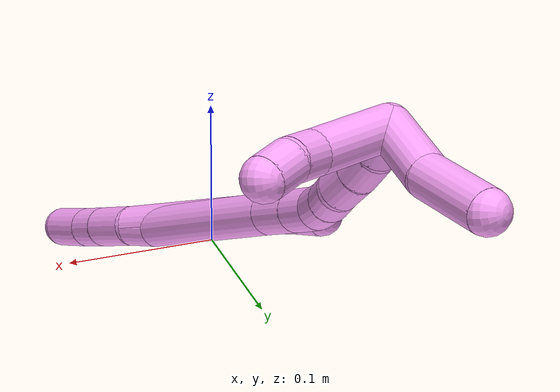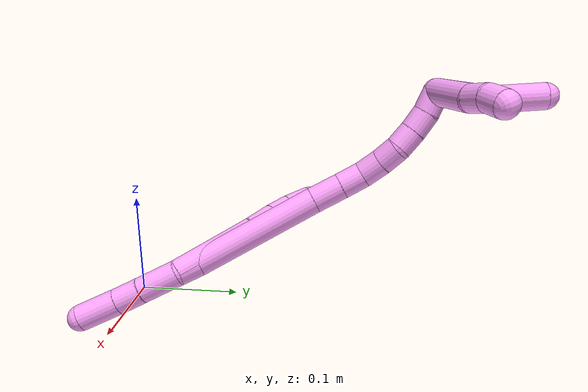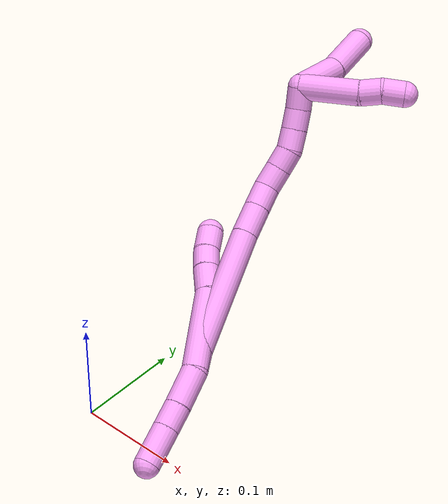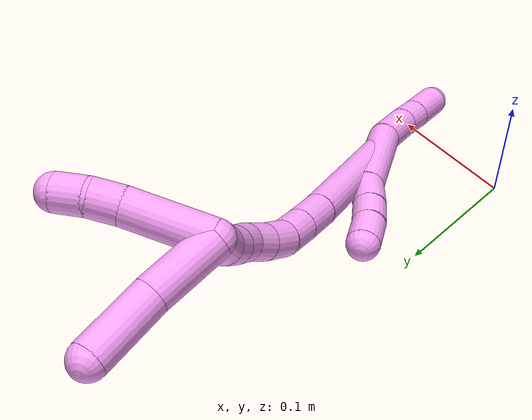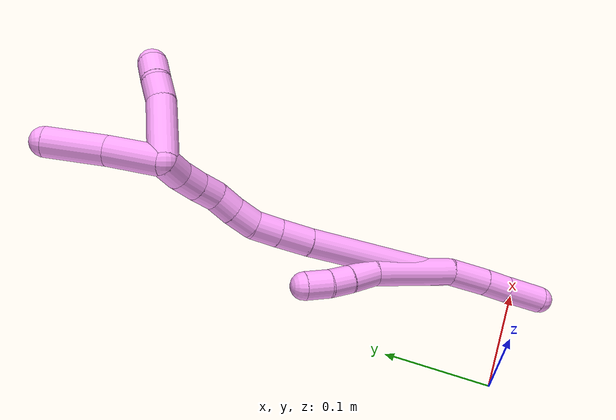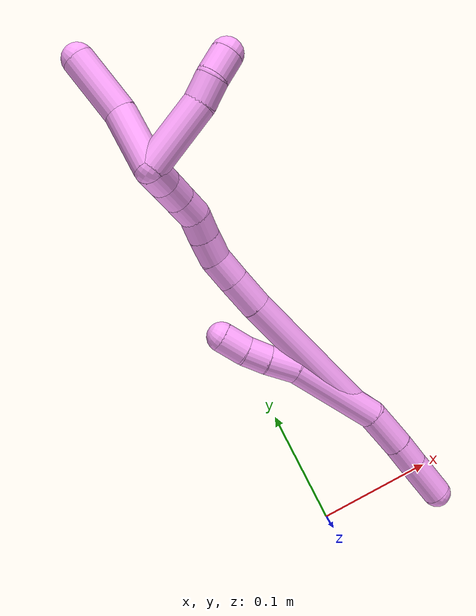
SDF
<sdf version="1.7">
 <world name="default">
  <model name="photoneo_s_sensor">
   <static>1</static>
   <pose>0 0 2 1.57079 1.57079 3.14159</pose>
   <link name="link">
    <inertial><mass>0.1</mass></inertial>
    <sensor name="sensor" type="depth">
     <update_rate>30</update_rate>
     <camera>
      <horizontal_fov>1.22</horizontal_fov>
      <image><width>1920</width><height>1200</height><format>B8G8R8</format></image>
      <clip><near>0.1</near><far>4</far></clip>
      <depth_camera><output>points</output></depth_camera>
     </camera>
     <plugin name="camera_plugin" filename="libgazebo_ros_depth_camera.so">
      <baseline>0.2</baseline>
      <alwaysOn>1</alwaysOn>
      <updateRate>0.0</updateRate>
      <cameraName>camera_ir</cameraName>
      <imageTopicName>/camera/color/image_raw</imageTopicName>
      <cameraInfoTopicName>/camera/color/camera_info</cameraInfoTopicName>
      <depthImageTopicName>/camera/depth/image_raw</depthImageTopicName>
      <depthImageCameraInfoTopicName>/camera/depth/camera_info</depthImageCameraInfoTopicName>
      <pointCloudTopicName>/camera/depth/points</pointCloudTopicName>
      <frameName>fr_optical</frameName>
      <pointCloudCutoff>0.1</pointCloudCutoff>
      <pointCloudCutoffMax>2.0</pointCloudCutoffMax>
      <distortionK1>0</distortionK1>
      <distortionK2>0</distortionK2>
      <distortionK3>0</distortionK3>
      <distortionT1>0</distortionT1>
      <distortionT2>0</distortionT2>
      <CxPrime>0</CxPrime>
      <Cx>0</Cx>
      <Cy>0</Cy>
      <focalLength>0</focalLength>
      <hackBaseline>0</hackBaseline>
     </plugin>
    </sensor>
   </link>
  </model>
  <model name="bin">
   <static>1</static>
   <link name="bottom">
    <collision name="collision-bottom">
     <pose>0 0 -0.01 0 -0 0</pose>
     <geometry><box><size>0.8 0.6 0.02</size></box></geometry>
     <surface>
      <friction><ode><mu>100</mu><mu2>100</mu2></ode></friction>
      <contact><collide_bitmask>65535</collide_bitmask></contact>
     </surface>
    </collision>
   </link>
   <link name="west_wall">
    <collision name="collision-west_wall">
     <pose>-0.41 0 0.1 0 -0 0</pose>
     <geometry><box><size>0.02 0.6 0.2</size></box></geometry>
     <surface>
      <friction><ode><mu>100</mu><mu2>100</mu2></ode></friction>
      <contact><collide_bitmask>65535</collide_bitmask></contact>
     </surface>
    </collision>
   </link>
   <link name="east_wall">
    <collision name="collision-east_wall">
     <pose>0.41 0 0.1 0 -0 0</pose>
     <geometry><box><size>0.02 0.6 0.2</size></box></geometry>
     <surface>
      <friction><ode><mu>100</mu><mu2>100</mu2></ode></friction>
      <contact><collide_bitmask>65535</collide_bitmask></contact>
     </surface>
    </collision>
   </link>
   <link name="south_wall">
    <collision name="collision-south_wall">
     <pose>0 -0.31 0.1 0 -0 0</pose>
     <geometry><box><size>0.8 0.02 0.2</size></box></geometry>
     <surface>
      <friction><ode><mu>100</mu><mu2>100</mu2></ode></friction>
      <contact><collide_bitmask>65535</collide_bitmask></contact>
     </surface>
    </collision>
   </link>
   <link name="north_wall">
    <collision name="collision-north_wall">
     <pose>0 0.31 0.1 0 -0 0</pose>
     <geometry><box><size>0.8 0.02 0.2</size></box></geometry>
     <surface>
      <friction><ode><mu>100</mu><mu2>100</mu2></ode></friction>
      <contact><collide_bitmask>65535</collide_bitmask></contact>
     </surface>
    </collision>
   </link>
  </model>
  <model name="4">
   <static>0</static>
   <link name="4">
    <collision name="collision-cylinder-e_1_2_8">
     <pose>0.002981 0.002922 0.04024 -0.072486 0.073762 -0.002676</pose>
     <geometry><cylinder><radius>0.0125</radius><length>0.080912</length></cylinder></geometry>
     <surface>
      <friction><ode><mu>1.16</mu><mu2>1.16</mu2><slip1>0</slip1><slip2>0</slip2></ode></friction>
      <contact><ode><kp>1e+06</kp><kd>1</kd><max_vel>0</max_vel><min_depth>0.001</min_depth></ode></contact>
     </surface>
    </collision>
    <visual name="visual-cylinder-e_1_2_8">
     <pose>0.002981 0.002922 0.04024 -0.072486 0.073762 -0.002676</pose>
     <geometry><cylinder><radius>0.0125</radius><length>0.080912</length></cylinder></geometry>
     <material><ambient>1 0.65098 0.996078 1</ambient></material>
    </visual>
    <collision name="collision-cylinder-e_2_8_9">
     <pose>0.00908 0.004407 0.093134 0.113097 0.240063 0.013655</pose>
     <geometry><cylinder><radius>0.0125</radius><length>0.026222</length></cylinder></geometry>
     <surface>
      <friction><ode><mu>1.16</mu><mu2>1.16</mu2><slip1>0</slip1><slip2>0</slip2></ode></friction>
      <contact><ode><kp>1e+06</kp><kd>1</kd><max_vel>0</max_vel><min_depth>0.001</min_depth></ode></contact>
     </surface>
    </collision>
    <visual name="visual-cylinder-e_2_8_9">
     <pose>0.00908 0.004407 0.093134 0.113097 0.240063 0.013655</pose>
     <geometry><cylinder><radius>0.0125</radius><length>0.026222</length></cylinder></geometry>
     <material><ambient>1 0.65098 0.996078 1</ambient></material>
    </visual>
    <collision name="collision-cylinder-e_3_9_10">
     <pose>0.01376 0.002061 0.115643 0.091898 0.156631 0.007217</pose>
     <geometry><cylinder><radius>0.0125</radius><length>0.020039</length></cylinder></geometry>
     <surface>
      <friction><ode><mu>1.16</mu><mu2>1.16</mu2><slip1>0</slip1><slip2>0</slip2></ode></friction>
      <contact><ode><kp>1e+06</kp><kd>1</kd><max_vel>0</max_vel><min_depth>0.001</min_depth></ode></contact>
     </surface>
    </collision>
    <visual name="visual-cylinder-e_3_9_10">
     <pose>0.01376 0.002061 0.115643 0.091898 0.156631 0.007217</pose>
     <geometry><cylinder><radius>0.0125</radius><length>0.020039</length></cylinder></geometry>
     <material><ambient>1 0.65098 0.996078 1</ambient></material>
    </visual>
    <collision name="collision-cylinder-e_4_10_6">
     <pose>0.015404 0.000671 0.136901 0.042287 0.007077 0.00015</pose>
     <geometry><cylinder><radius>0.0125</radius><length>0.022827</length></cylinder></geometry>
     <surface>
      <friction><ode><mu>1.16</mu><mu2>1.16</mu2><slip1>0</slip1><slip2>0</slip2></ode></friction>
      <contact><ode><kp>1e+06</kp><kd>1</kd><max_vel>0</max_vel><min_depth>0.001</min_depth></ode></contact>
     </surface>
    </collision>
    <visual name="visual-cylinder-e_4_10_6">
     <pose>0.015404 0.000671 0.136901 0.042287 0.007077 0.00015</pose>
     <geometry><cylinder><radius>0.0125</radius><length>0.022827</length></cylinder></geometry>
     <material><ambient>1 0.65098 0.996078 1</ambient></material>
    </visual>
    <collision name="collision-cylinder-e_1_2_11">
     <pose>0.002431 -0.004854 -0.017999 2.87816 0.129662 0.911295</pose>
     <geometry><cylinder><radius>0.0125</radius><length>0.0376</length></cylinder></geometry>
     <surface>
      <friction><ode><mu>1.16</mu><mu2>1.16</mu2><slip1>0</slip1><slip2>0</slip2></ode></friction>
      <contact><ode><kp>1e+06</kp><kd>1</kd><max_vel>0</max_vel><min_depth>0.001</min_depth></ode></contact>
     </surface>
    </collision>
    <visual name="visual-cylinder-e_1_2_11">
     <pose>0.002431 -0.004854 -0.017999 2.87816 0.129662 0.911295</pose>
     <geometry><cylinder><radius>0.0125</radius><length>0.0376</length></cylinder></geometry>
     <material><ambient>1 0.65098 0.996078 1</ambient></material>
    </visual>
    <collision name="collision-cylinder-e_2_11_12">
     <pose>0.006738 -0.013189 -0.047517 2.84816 0.154673 0.965927</pose>
     <geometry><cylinder><radius>0.0125</radius><length>0.024358</length></cylinder></geometry>
     <surface>
      <friction><ode><mu>1.16</mu><mu2>1.16</mu2><slip1>0</slip1><slip2>0</slip2></ode></friction>
      <contact><ode><kp>1e+06</kp><kd>1</kd><max_vel>0</max_vel><min_depth>0.001</min_depth></ode></contact>
     </surface>
    </collision>
    <visual name="visual-cylinder-e_2_11_12">
     <pose>0.006738 -0.013189 -0.047517 2.84816 0.154673 0.965927</pose>
     <geometry><cylinder><radius>0.0125</radius><length>0.024358</length></cylinder></geometry>
     <material><ambient>1 0.65098 0.996078 1</ambient></material>
    </visual>
    <collision name="collision-cylinder-e_3_12_5">
     <pose>0.011761 -0.021614 -0.077132 2.87488 0.166221 1.11136</pose>
     <geometry><cylinder><radius>0.0125</radius><length>0.038042</length></cylinder></geometry>
     <surface>
      <friction><ode><mu>1.16</mu><mu2>1.16</mu2><slip1>0</slip1><slip2>0</slip2></ode></friction>
      <contact><ode><kp>1e+06</kp><kd>1</kd><max_vel>0</max_vel><min_depth>0.001</min_depth></ode></contact>
     </surface>
    </collision>
    <visual name="visual-cylinder-e_3_12_5">
     <pose>0.011761 -0.021614 -0.077132 2.87488 0.166221 1.11136</pose>
     <geometry><cylinder><radius>0.0125</radius><length>0.038042</length></cylinder></geometry>
     <material><ambient>1 0.65098 0.996078 1</ambient></material>
    </visual>
    <collision name="collision-cylinder-e_1_2_13">
     <pose>7.5e-05 0.000164 0.010574 -0.015545 0.007046 -5.5e-05</pose>
     <geometry><cylinder><radius>0.0125</radius><length>0.02115</length></cylinder></geometry>
     <surface>
      <friction><ode><mu>1.16</mu><mu2>1.16</mu2><slip1>0</slip1><slip2>0</slip2></ode></friction>
      <contact><ode><kp>1e+06</kp><kd>1</kd><max_vel>0</max_vel><min_depth>0.001</min_depth></ode></contact>
     </surface>
    </collision>
    <visual name="visual-cylinder-e_1_2_13">
     <pose>7.5e-05 0.000164 0.010574 -0.015545 0.007046 -5.5e-05</pose>
     <geometry><cylinder><radius>0.0125</radius><length>0.02115</length></cylinder></geometry>
     <material><ambient>1 0.65098 0.996078 1</ambient></material>
    </visual>
    <collision name="collision-cylinder-e_2_13_14">
     <pose>-0.003585 0.015469 0.080643 -0.249187 -0.060753 0.007611</pose>
     <geometry><cylinder><radius>0.0125</radius><length>0.123011</length></cylinder></geometry>
     <surface>
      <friction><ode><mu>1.16</mu><mu2>1.16</mu2><slip1>0</slip1><slip2>0</slip2></ode></friction>
      <contact><ode><kp>1e+06</kp><kd>1</kd><max_vel>0</max_vel><min_depth>0.001</min_depth></ode></contact>
     </surface>
    </collision>
    <visual name="visual-cylinder-e_2_13_14">
     <pose>-0.003585 0.015469 0.080643 -0.249187 -0.060753 0.007611</pose>
     <geometry><cylinder><radius>0.0125</radius><length>0.123011</length></cylinder></geometry>
     <material><ambient>1 0.65098 0.996078 1</ambient></material>
    </visual>
    <collision name="collision-cylinder-e_3_14_15">
     <pose>-0.008883 0.034638 0.154066 -0.281577 -0.107435 0.015241</pose>
     <geometry><cylinder><radius>0.0125</radius><length>0.029163</length></cylinder></geometry>
     <surface>
      <friction><ode><mu>1.16</mu><mu2>1.16</mu2><slip1>0</slip1><slip2>0</slip2></ode></friction>
      <contact><ode><kp>1e+06</kp><kd>1</kd><max_vel>0</max_vel><min_depth>0.001</min_depth></ode></contact>
     </surface>
    </collision>
    <visual name="visual-cylinder-e_3_14_15">
     <pose>-0.008883 0.034638 0.154066 -0.281577 -0.107435 0.015241</pose>
     <geometry><cylinder><radius>0.0125</radius><length>0.029163</length></cylinder></geometry>
     <material><ambient>1 0.65098 0.996078 1</ambient></material>
    </visual>
    <collision name="collision-cylinder-e_4_15_16">
     <pose>-0.011693 0.042152 0.178946 -0.308096 -0.108002 0.016786</pose>
     <geometry><cylinder><radius>0.0125</radius><length>0.023123</length></cylinder></geometry>
     <surface>
      <friction><ode><mu>1.16</mu><mu2>1.16</mu2><slip1>0</slip1><slip2>0</slip2></ode></friction>
      <contact><ode><kp>1e+06</kp><kd>1</kd><max_vel>0</max_vel><min_depth>0.001</min_depth></ode></contact>
     </surface>
    </collision>
    <visual name="visual-cylinder-e_4_15_16">
     <pose>-0.011693 0.042152 0.178946 -0.308096 -0.108002 0.016786</pose>
     <geometry><cylinder><radius>0.0125</radius><length>0.023123</length></cylinder></geometry>
     <material><ambient>1 0.65098 0.996078 1</ambient></material>
    </visual>
    <collision name="collision-cylinder-e_5_16_17">
     <pose>-0.014471 0.05159 0.198901 -0.584241 -0.140948 0.04245</pose>
     <geometry><cylinder><radius>0.0125</radius><length>0.021801</length></cylinder></geometry>
     <surface>
      <friction><ode><mu>1.16</mu><mu2>1.16</mu2><slip1>0</slip1><slip2>0</slip2></ode></friction>
      <contact><ode><kp>1e+06</kp><kd>1</kd><max_vel>0</max_vel><min_depth>0.001</min_depth></ode></contact>
     </surface>
    </collision>
    <visual name="visual-cylinder-e_5_16_17">
     <pose>-0.014471 0.05159 0.198901 -0.584241 -0.140948 0.04245</pose>
     <geometry><cylinder><radius>0.0125</radius><length>0.021801</length></cylinder></geometry>
     <material><ambient>1 0.65098 0.996078 1</ambient></material>
    </visual>
    <collision name="collision-cylinder-e_6_17_18">
     <pose>-0.016954 0.063822 0.215644 -0.681517 -0.095244 0.033795</pose>
     <geometry><cylinder><radius>0.0125</radius><length>0.020026</length></cylinder></geometry>
     <surface>
      <friction><ode><mu>1.16</mu><mu2>1.16</mu2><slip1>0</slip1><slip2>0</slip2></ode></friction>
      <contact><ode><kp>1e+06</kp><kd>1</kd><max_vel>0</max_vel><min_depth>0.001</min_depth></ode></contact>
     </surface>
    </collision>
    <visual name="visual-cylinder-e_6_17_18">
     <pose>-0.016954 0.063822 0.215644 -0.681517 -0.095244 0.033795</pose>
     <geometry><cylinder><radius>0.0125</radius><length>0.020026</length></cylinder></geometry>
     <material><ambient>1 0.65098 0.996078 1</ambient></material>
    </visual>
    <collision name="collision-cylinder-e_7_18_19">
     <pose>-0.016091 0.075212 0.231912 -0.53994 0.180633 -0.050112</pose>
     <geometry><cylinder><radius>0.0125</radius><length>0.020211</length></cylinder></geometry>
     <surface>
      <friction><ode><mu>1.16</mu><mu2>1.16</mu2><slip1>0</slip1><slip2>0</slip2></ode></friction>
      <contact><ode><kp>1e+06</kp><kd>1</kd><max_vel>0</max_vel><min_depth>0.001</min_depth></ode></contact>
     </surface>
    </collision>
    <visual name="visual-cylinder-e_7_18_19">
     <pose>-0.016091 0.075212 0.231912 -0.53994 0.180633 -0.050112</pose>
     <geometry><cylinder><radius>0.0125</radius><length>0.020211</length></cylinder></geometry>
     <material><ambient>1 0.65098 0.996078 1</ambient></material>
    </visual>
    <collision name="collision-cylinder-e_8_19_20">
     <pose>-0.011841 0.086022 0.248531 -0.61363 0.241184 -0.076747</pose>
     <geometry><cylinder><radius>0.0125</radius><length>0.020385</length></cylinder></geometry>
     <surface>
      <friction><ode><mu>1.16</mu><mu2>1.16</mu2><slip1>0</slip1><slip2>0</slip2></ode></friction>
      <contact><ode><kp>1e+06</kp><kd>1</kd><max_vel>0</max_vel><min_depth>0.001</min_depth></ode></contact>
     </surface>
    </collision>
    <visual name="visual-cylinder-e_8_19_20">
     <pose>-0.011841 0.086022 0.248531 -0.61363 0.241184 -0.076747</pose>
     <geometry><cylinder><radius>0.0125</radius><length>0.020385</length></cylinder></geometry>
     <material><ambient>1 0.65098 0.996078 1</ambient></material>
    </visual>
    <collision name="collision-cylinder-e_9_20_1">
     <pose>-0.005653 0.098555 0.263752 -0.76421 0.363197 -0.147312</pose>
     <geometry><cylinder><radius>0.0125</radius><length>0.021128</length></cylinder></geometry>
     <surface>
      <friction><ode><mu>1.16</mu><mu2>1.16</mu2><slip1>0</slip1><slip2>0</slip2></ode></friction>
      <contact><ode><kp>1e+06</kp><kd>1</kd><max_vel>0</max_vel><min_depth>0.001</min_depth></ode></contact>
     </surface>
    </collision>
    <visual name="visual-cylinder-e_9_20_1">
     <pose>-0.005653 0.098555 0.263752 -0.76421 0.363197 -0.147312</pose>
     <geometry><cylinder><radius>0.0125</radius><length>0.021128</length></cylinder></geometry>
     <material><ambient>1 0.65098 0.996078 1</ambient></material>
    </visual>
    <collision name="collision-cylinder-e_1_1_21">
     <pose>-0.01691 0.104368 0.290251 0.052624 -0.658583 -0.017987</pose>
     <geometry><cylinder><radius>0.0125</radius><length>0.049051</length></cylinder></geometry>
     <surface>
      <friction><ode><mu>1.16</mu><mu2>1.16</mu2><slip1>0</slip1><slip2>0</slip2></ode></friction>
      <contact><ode><kp>1e+06</kp><kd>1</kd><max_vel>0</max_vel><min_depth>0.001</min_depth></ode></contact>
     </surface>
    </collision>
    <visual name="visual-cylinder-e_1_1_21">
     <pose>-0.01691 0.104368 0.290251 0.052624 -0.658583 -0.017987</pose>
     <geometry><cylinder><radius>0.0125</radius><length>0.049051</length></cylinder></geometry>
     <material><ambient>1 0.65098 0.996078 1</ambient></material>
    </visual>
    <collision name="collision-cylinder-e_2_21_4">
     <pose>-0.042276 0.10332 0.332894 0.001196 -0.41869 -0.000254</pose>
     <geometry><cylinder><radius>0.0125</radius><length>0.050949</length></cylinder></geometry>
     <surface>
      <friction><ode><mu>1.16</mu><mu2>1.16</mu2><slip1>0</slip1><slip2>0</slip2></ode></friction>
      <contact><ode><kp>1e+06</kp><kd>1</kd><max_vel>0</max_vel><min_depth>0.001</min_depth></ode></contact>
     </surface>
    </collision>
    <visual name="visual-cylinder-e_2_21_4">
     <pose>-0.042276 0.10332 0.332894 0.001196 -0.41869 -0.000254</pose>
     <geometry><cylinder><radius>0.0125</radius><length>0.050949</length></cylinder></geometry>
     <material><ambient>1 0.65098 0.996078 1</ambient></material>
    </visual>
    <collision name="collision-cylinder-e_1_1_22">
     <pose>-0.025071 0.12273 0.268785 -1.69109 -0.924805 1.02451</pose>
     <geometry><cylinder><radius>0.0125</radius><length>0.058035</length></cylinder></geometry>
     <surface>
      <friction><ode><mu>1.16</mu><mu2>1.16</mu2><slip1>0</slip1><slip2>0</slip2></ode></friction>
      <contact><ode><kp>1e+06</kp><kd>1</kd><max_vel>0</max_vel><min_depth>0.001</min_depth></ode></contact>
     </surface>
    </collision>
    <visual name="visual-cylinder-e_1_1_22">
     <pose>-0.025071 0.12273 0.268785 -1.69109 -0.924805 1.02451</pose>
     <geometry><cylinder><radius>0.0125</radius><length>0.058035</length></cylinder></geometry>
     <material><ambient>1 0.65098 0.996078 1</ambient></material>
    </visual>
    <collision name="collision-cylinder-e_2_22_23">
     <pose>-0.056146 0.146834 0.267933 -1.38878 -0.854942 0.725189</pose>
     <geometry><cylinder><radius>0.0125</radius><length>0.020952</length></cylinder></geometry>
     <surface>
      <friction><ode><mu>1.16</mu><mu2>1.16</mu2><slip1>0</slip1><slip2>0</slip2></ode></friction>
      <contact><ode><kp>1e+06</kp><kd>1</kd><max_vel>0</max_vel><min_depth>0.001</min_depth></ode></contact>
     </surface>
    </collision>
    <visual name="visual-cylinder-e_2_22_23">
     <pose>-0.056146 0.146834 0.267933 -1.38878 -0.854942 0.725189</pose>
     <geometry><cylinder><radius>0.0125</radius><length>0.020952</length></cylinder></geometry>
     <material><ambient>1 0.65098 0.996078 1</ambient></material>
    </visual>
    <collision name="collision-cylinder-e_3_23_3">
     <pose>-0.073451 0.158282 0.269386 -1.52634 -1.10784 1.06846</pose>
     <geometry><cylinder><radius>0.0125</radius><length>0.021013</length></cylinder></geometry>
     <surface>
      <friction><ode><mu>1.16</mu><mu2>1.16</mu2><slip1>0</slip1><slip2>0</slip2></ode></friction>
      <contact><ode><kp>1e+06</kp><kd>1</kd><max_vel>0</max_vel><min_depth>0.001</min_depth></ode></contact>
     </surface>
    </collision>
    <visual name="visual-cylinder-e_3_23_3">
     <pose>-0.073451 0.158282 0.269386 -1.52634 -1.10784 1.06846</pose>
     <geometry><cylinder><radius>0.0125</radius><length>0.021013</length></cylinder></geometry>
     <material><ambient>1 0.65098 0.996078 1</ambient></material>
    </visual>
    <collision name="collision-sphere-3">
     <pose>-0.082851 0.16297 0.269594 0 -0 0</pose>
     <geometry><sphere><radius>0.0125</radius></sphere></geometry>
     <surface>
      <friction><ode><mu>1.16</mu><mu2>1.16</mu2><slip1>0</slip1><slip2>0</slip2></ode></friction>
      <contact><ode><kp>1e+06</kp><kd>1</kd><max_vel>0</max_vel><min_depth>0.001</min_depth></ode></contact>
     </surface>
    </collision>
    <visual name="visual-sphere-3">
     <pose>-0.082851 0.16297 0.269594 0 -0 0</pose>
     <geometry><sphere><radius>0.0125</radius></sphere></geometry>
     <material><ambient>1 0.65098 0.996078 1</ambient></material>
    </visual>
    <collision name="collision-sphere-23">
     <pose>-0.064051 0.153595 0.269177 0 -0 0</pose>
     <geometry><sphere><radius>0.0125</radius></sphere></geometry>
     <surface>
      <friction><ode><mu>1.16</mu><mu2>1.16</mu2><slip1>0</slip1><slip2>0</slip2></ode></friction>
      <contact><ode><kp>1e+06</kp><kd>1</kd><max_vel>0</max_vel><min_depth>0.001</min_depth></ode></contact>
     </surface>
    </collision>
    <visual name="visual-sphere-23">
     <pose>-0.064051 0.153595 0.269177 0 -0 0</pose>
     <geometry><sphere><radius>0.0125</radius></sphere></geometry>
     <material><ambient>1 0.65098 0.996078 1</ambient></material>
    </visual>
    <collision name="collision-sphere-22">
     <pose>-0.048242 0.140072 0.266688 0 -0 0</pose>
     <geometry><sphere><radius>0.0125</radius></sphere></geometry>
     <surface>
      <friction><ode><mu>1.16</mu><mu2>1.16</mu2><slip1>0</slip1><slip2>0</slip2></ode></friction>
      <contact><ode><kp>1e+06</kp><kd>1</kd><max_vel>0</max_vel><min_depth>0.001</min_depth></ode></contact>
     </surface>
    </collision>
    <visual name="visual-sphere-22">
     <pose>-0.048242 0.140072 0.266688 0 -0 0</pose>
     <geometry><sphere><radius>0.0125</radius></sphere></geometry>
     <material><ambient>1 0.65098 0.996078 1</ambient></material>
    </visual>
    <collision name="collision-sphere-4">
     <pose>-0.052633 0.103292 0.356168 0 -0 0</pose>
     <geometry><sphere><radius>0.0125</radius></sphere></geometry>
     <surface>
      <friction><ode><mu>1.16</mu><mu2>1.16</mu2><slip1>0</slip1><slip2>0</slip2></ode></friction>
      <contact><ode><kp>1e+06</kp><kd>1</kd><max_vel>0</max_vel><min_depth>0.001</min_depth></ode></contact>
     </surface>
    </collision>
    <visual name="visual-sphere-4">
     <pose>-0.052633 0.103292 0.356168 0 -0 0</pose>
     <geometry><sphere><radius>0.0125</radius></sphere></geometry>
     <material><ambient>1 0.65098 0.996078 1</ambient></material>
    </visual>
    <collision name="collision-sphere-21">
     <pose>-0.031919 0.103347 0.30962 0 -0 0</pose>
     <geometry><sphere><radius>0.0125</radius></sphere></geometry>
     <surface>
      <friction><ode><mu>1.16</mu><mu2>1.16</mu2><slip1>0</slip1><slip2>0</slip2></ode></friction>
      <contact><ode><kp>1e+06</kp><kd>1</kd><max_vel>0</max_vel><min_depth>0.001</min_depth></ode></contact>
     </surface>
    </collision>
    <visual name="visual-sphere-21">
     <pose>-0.031919 0.103347 0.30962 0 -0 0</pose>
     <geometry><sphere><radius>0.0125</radius></sphere></geometry>
     <material><ambient>1 0.65098 0.996078 1</ambient></material>
    </visual>
    <collision name="collision-sphere-1">
     <pose>-0.0019 0.105388 0.270881 0 -0 0</pose>
     <geometry><sphere><radius>0.0125</radius></sphere></geometry>
     <surface>
      <friction><ode><mu>1.16</mu><mu2>1.16</mu2><slip1>0</slip1><slip2>0</slip2></ode></friction>
      <contact><ode><kp>1e+06</kp><kd>1</kd><max_vel>0</max_vel><min_depth>0.001</min_depth></ode></contact>
     </surface>
    </collision>
    <visual name="visual-sphere-1">
     <pose>-0.0019 0.105388 0.270881 0 -0 0</pose>
     <geometry><sphere><radius>0.0125</radius></sphere></geometry>
     <material><ambient>1 0.65098 0.996078 1</ambient></material>
    </visual>
    <collision name="collision-sphere-11">
     <pose>0.004862 -0.009709 -0.035998 0 -0 0</pose>
     <geometry><sphere><radius>0.0125</radius></sphere></geometry>
     <surface>
      <friction><ode><mu>1.16</mu><mu2>1.16</mu2><slip1>0</slip1><slip2>0</slip2></ode></friction>
      <contact><ode><kp>1e+06</kp><kd>1</kd><max_vel>0</max_vel><min_depth>0.001</min_depth></ode></contact>
     </surface>
    </collision>
    <visual name="visual-sphere-11">
     <pose>0.004862 -0.009709 -0.035998 0 -0 0</pose>
     <geometry><sphere><radius>0.0125</radius></sphere></geometry>
     <material><ambient>1 0.65098 0.996078 1</ambient></material>
    </visual>
    <collision name="collision-sphere-6">
     <pose>0.015485 0.000188 0.148304 0 -0 0</pose>
     <geometry><sphere><radius>0.0125</radius></sphere></geometry>
     <surface>
      <friction><ode><mu>1.16</mu><mu2>1.16</mu2><slip1>0</slip1><slip2>0</slip2></ode></friction>
      <contact><ode><kp>1e+06</kp><kd>1</kd><max_vel>0</max_vel><min_depth>0.001</min_depth></ode></contact>
     </surface>
    </collision>
    <visual name="visual-sphere-6">
     <pose>0.015485 0.000188 0.148304 0 -0 0</pose>
     <geometry><sphere><radius>0.0125</radius></sphere></geometry>
     <material><ambient>1 0.65098 0.996078 1</ambient></material>
    </visual>
    <collision name="collision-sphere-10">
     <pose>0.015323 0.001153 0.125498 0 -0 0</pose>
     <geometry><sphere><radius>0.0125</radius></sphere></geometry>
     <surface>
      <friction><ode><mu>1.16</mu><mu2>1.16</mu2><slip1>0</slip1><slip2>0</slip2></ode></friction>
      <contact><ode><kp>1e+06</kp><kd>1</kd><max_vel>0</max_vel><min_depth>0.001</min_depth></ode></contact>
     </surface>
    </collision>
    <visual name="visual-sphere-10">
     <pose>0.015323 0.001153 0.125498 0 -0 0</pose>
     <geometry><sphere><radius>0.0125</radius></sphere></geometry>
     <material><ambient>1 0.65098 0.996078 1</ambient></material>
    </visual>
    <collision name="collision-sphere-9">
     <pose>0.012197 0.00297 0.105787 0 -0 0</pose>
     <geometry><sphere><radius>0.0125</radius></sphere></geometry>
     <surface>
      <friction><ode><mu>1.16</mu><mu2>1.16</mu2><slip1>0</slip1><slip2>0</slip2></ode></friction>
      <contact><ode><kp>1e+06</kp><kd>1</kd><max_vel>0</max_vel><min_depth>0.001</min_depth></ode></contact>
     </surface>
    </collision>
    <visual name="visual-sphere-9">
     <pose>0.012197 0.00297 0.105787 0 -0 0</pose>
     <geometry><sphere><radius>0.0125</radius></sphere></geometry>
     <material><ambient>1 0.65098 0.996078 1</ambient></material>
    </visual>
    <collision name="collision-sphere-2">
     <geometry><sphere><radius>0.0125</radius></sphere></geometry>
     <surface>
      <friction><ode><mu>1.16</mu><mu2>1.16</mu2><slip1>0</slip1><slip2>0</slip2></ode></friction>
      <contact><ode><kp>1e+06</kp><kd>1</kd><max_vel>0</max_vel><min_depth>0.001</min_depth></ode></contact>
     </surface>
    </collision>
    <visual name="visual-sphere-2">
     <geometry><sphere><radius>0.0125</radius></sphere></geometry>
     <material><ambient>1 0.65098 0.996078 1</ambient></material>
    </visual>
    <collision name="collision-sphere-19">
     <pose>-0.014276 0.080323 0.240439 0 -0 0</pose>
     <geometry><sphere><radius>0.0125</radius></sphere></geometry>
     <surface>
      <friction><ode><mu>1.16</mu><mu2>1.16</mu2><slip1>0</slip1><slip2>0</slip2></ode></friction>
      <contact><ode><kp>1e+06</kp><kd>1</kd><max_vel>0</max_vel><min_depth>0.001</min_depth></ode></contact>
     </surface>
    </collision>
    <visual name="visual-sphere-19">
     <pose>-0.014276 0.080323 0.240439 0 -0 0</pose>
     <geometry><sphere><radius>0.0125</radius></sphere></geometry>
     <material><ambient>1 0.65098 0.996078 1</ambient></material>
    </visual>
    <collision name="collision-sphere-8">
     <pose>0.005963 0.005844 0.08048 0 -0 0</pose>
     <geometry><sphere><radius>0.0125</radius></sphere></geometry>
     <surface>
      <friction><ode><mu>1.16</mu><mu2>1.16</mu2><slip1>0</slip1><slip2>0</slip2></ode></friction>
      <contact><ode><kp>1e+06</kp><kd>1</kd><max_vel>0</max_vel><min_depth>0.001</min_depth></ode></contact>
     </surface>
    </collision>
    <visual name="visual-sphere-8">
     <pose>0.005963 0.005844 0.08048 0 -0 0</pose>
     <geometry><sphere><radius>0.0125</radius></sphere></geometry>
     <material><ambient>1 0.65098 0.996078 1</ambient></material>
    </visual>
    <collision name="collision-sphere-12">
     <pose>0.008614 -0.01667 -0.059037 0 -0 0</pose>
     <geometry><sphere><radius>0.0125</radius></sphere></geometry>
     <surface>
      <friction><ode><mu>1.16</mu><mu2>1.16</mu2><slip1>0</slip1><slip2>0</slip2></ode></friction>
      <contact><ode><kp>1e+06</kp><kd>1</kd><max_vel>0</max_vel><min_depth>0.001</min_depth></ode></contact>
     </surface>
    </collision>
    <visual name="visual-sphere-12">
     <pose>0.008614 -0.01667 -0.059037 0 -0 0</pose>
     <geometry><sphere><radius>0.0125</radius></sphere></geometry>
     <material><ambient>1 0.65098 0.996078 1</ambient></material>
    </visual>
    <collision name="collision-sphere-5">
     <pose>0.014908 -0.026558 -0.095228 0 -0 0</pose>
     <geometry><sphere><radius>0.0125</radius></sphere></geometry>
     <surface>
      <friction><ode><mu>1.16</mu><mu2>1.16</mu2><slip1>0</slip1><slip2>0</slip2></ode></friction>
      <contact><ode><kp>1e+06</kp><kd>1</kd><max_vel>0</max_vel><min_depth>0.001</min_depth></ode></contact>
     </surface>
    </collision>
    <visual name="visual-sphere-5">
     <pose>0.014908 -0.026558 -0.095228 0 -0 0</pose>
     <geometry><sphere><radius>0.0125</radius></sphere></geometry>
     <material><ambient>1 0.65098 0.996078 1</ambient></material>
    </visual>
    <collision name="collision-sphere-13">
     <pose>0.000149 0.000329 0.021147 0 -0 0</pose>
     <geometry><sphere><radius>0.0125</radius></sphere></geometry>
     <surface>
      <friction><ode><mu>1.16</mu><mu2>1.16</mu2><slip1>0</slip1><slip2>0</slip2></ode></friction>
      <contact><ode><kp>1e+06</kp><kd>1</kd><max_vel>0</max_vel><min_depth>0.001</min_depth></ode></contact>
     </surface>
    </collision>
    <visual name="visual-sphere-13">
     <pose>0.000149 0.000329 0.021147 0 -0 0</pose>
     <geometry><sphere><radius>0.0125</radius></sphere></geometry>
     <material><ambient>1 0.65098 0.996078 1</ambient></material>
    </visual>
    <collision name="collision-sphere-14">
     <pose>-0.00732 0.030609 0.140139 0 -0 0</pose>
     <geometry><sphere><radius>0.0125</radius></sphere></geometry>
     <surface>
      <friction><ode><mu>1.16</mu><mu2>1.16</mu2><slip1>0</slip1><slip2>0</slip2></ode></friction>
      <contact><ode><kp>1e+06</kp><kd>1</kd><max_vel>0</max_vel><min_depth>0.001</min_depth></ode></contact>
     </surface>
    </collision>
    <visual name="visual-sphere-14">
     <pose>-0.00732 0.030609 0.140139 0 -0 0</pose>
     <geometry><sphere><radius>0.0125</radius></sphere></geometry>
     <material><ambient>1 0.65098 0.996078 1</ambient></material>
    </visual>
    <collision name="collision-sphere-15">
     <pose>-0.010447 0.038666 0.167993 0 -0 0</pose>
     <geometry><sphere><radius>0.0125</radius></sphere></geometry>
     <surface>
      <friction><ode><mu>1.16</mu><mu2>1.16</mu2><slip1>0</slip1><slip2>0</slip2></ode></friction>
      <contact><ode><kp>1e+06</kp><kd>1</kd><max_vel>0</max_vel><min_depth>0.001</min_depth></ode></contact>
     </surface>
    </collision>
    <visual name="visual-sphere-15">
     <pose>-0.010447 0.038666 0.167993 0 -0 0</pose>
     <geometry><sphere><radius>0.0125</radius></sphere></geometry>
     <material><ambient>1 0.65098 0.996078 1</ambient></material>
    </visual>
    <collision name="collision-sphere-16">
     <pose>-0.012939 0.045638 0.189899 0 -0 0</pose>
     <geometry><sphere><radius>0.0125</radius></sphere></geometry>
     <surface>
      <friction><ode><mu>1.16</mu><mu2>1.16</mu2><slip1>0</slip1><slip2>0</slip2></ode></friction>
      <contact><ode><kp>1e+06</kp><kd>1</kd><max_vel>0</max_vel><min_depth>0.001</min_depth></ode></contact>
     </surface>
    </collision>
    <visual name="visual-sphere-16">
     <pose>-0.012939 0.045638 0.189899 0 -0 0</pose>
     <geometry><sphere><radius>0.0125</radius></sphere></geometry>
     <material><ambient>1 0.65098 0.996078 1</ambient></material>
    </visual>
    <collision name="collision-sphere-17">
     <pose>-0.016002 0.057543 0.207903 0 -0 0</pose>
     <geometry><sphere><radius>0.0125</radius></sphere></geometry>
     <surface>
      <friction><ode><mu>1.16</mu><mu2>1.16</mu2><slip1>0</slip1><slip2>0</slip2></ode></friction>
      <contact><ode><kp>1e+06</kp><kd>1</kd><max_vel>0</max_vel><min_depth>0.001</min_depth></ode></contact>
     </surface>
    </collision>
    <visual name="visual-sphere-17">
     <pose>-0.016002 0.057543 0.207903 0 -0 0</pose>
     <geometry><sphere><radius>0.0125</radius></sphere></geometry>
     <material><ambient>1 0.65098 0.996078 1</ambient></material>
    </visual>
    <collision name="collision-sphere-18">
     <pose>-0.017906 0.070101 0.223385 0 -0 0</pose>
     <geometry><sphere><radius>0.0125</radius></sphere></geometry>
     <surface>
      <friction><ode><mu>1.16</mu><mu2>1.16</mu2><slip1>0</slip1><slip2>0</slip2></ode></friction>
      <contact><ode><kp>1e+06</kp><kd>1</kd><max_vel>0</max_vel><min_depth>0.001</min_depth></ode></contact>
     </surface>
    </collision>
    <visual name="visual-sphere-18">
     <pose>-0.017906 0.070101 0.223385 0 -0 0</pose>
     <geometry><sphere><radius>0.0125</radius></sphere></geometry>
     <material><ambient>1 0.65098 0.996078 1</ambient></material>
    </visual>
    <collision name="collision-sphere-20">
     <pose>-0.009406 0.091721 0.256623 0 -0 0</pose>
     <geometry><sphere><radius>0.0125</radius></sphere></geometry>
     <surface>
      <friction><ode><mu>1.16</mu><mu2>1.16</mu2><slip1>0</slip1><slip2>0</slip2></ode></friction>
      <contact><ode><kp>1e+06</kp><kd>1</kd><max_vel>0</max_vel><min_depth>0.001</min_depth></ode></contact>
     </surface>
    </collision>
    <visual name="visual-sphere-20">
     <pose>-0.009406 0.091721 0.256623 0 -0 0</pose>
     <geometry><sphere><radius>0.0125</radius></sphere></geometry>
     <material><ambient>1 0.65098 0.996078 1</ambient></material>
    </visual>
    <inertial>
     <pose>-0.010211 0.046188 0.142931 0 -0 0</pose>
     <mass>0.75</mass>
     <inertia><ixx>0.000278</ixx><ixy>0</ixy><ixz>0</ixz><iyy>0.000286</iyy><iyz>0</iyz><izz>8e-06</izz></inertia>
    </inertial>
   </link>
   <pose>0.074271 0.063061 0.055186 1.2473 -0.522556 -2.4353</pose>
  </model>
 </world>
</sdf>
